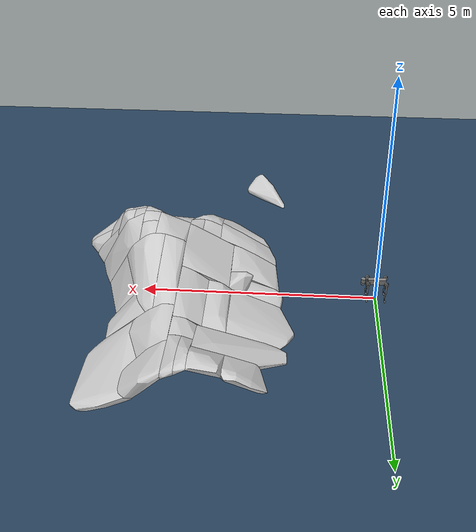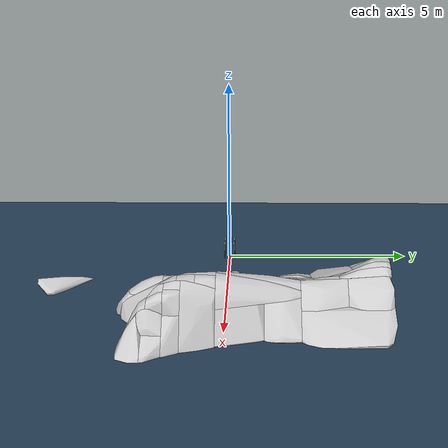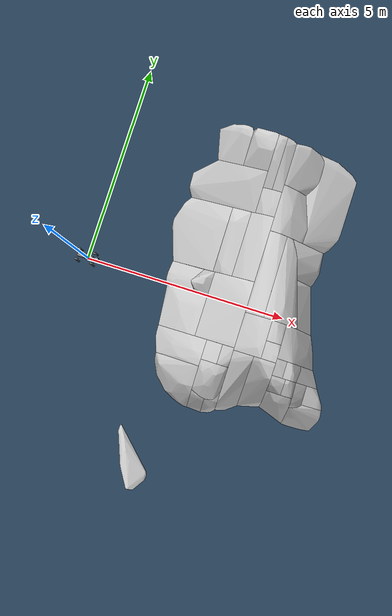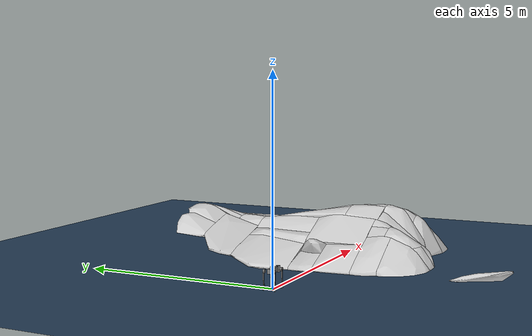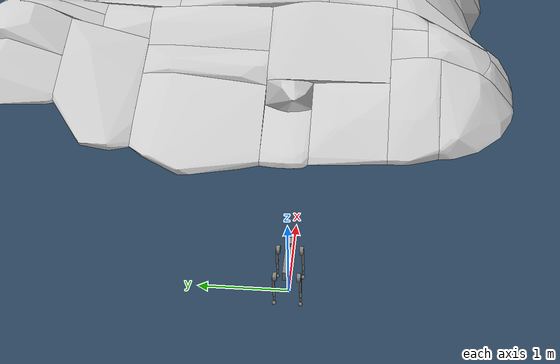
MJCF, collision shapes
<mujoco model="go2">
  <compiler angle="radian" autolimits="true"/>

  <option cone="elliptic" impratio="100"/>

  <default>
    <default class="go2">
      <geom friction="0.6" margin="0.001" condim="1"/>
      <joint axis="0 1 0" damping="2" armature="0.01" frictionloss="0.2"/>
      <motor ctrlrange="-23.7 23.7"/>
      <default class="abduction">
        <joint axis="1 0 0" range="-1.0472 1.0472"/>
      </default>
      <default class="hip">
        <default class="front_hip">
          <joint range="-1.5708 3.4907"/>
        </default>
        <default class="back_hip">
          <joint range="-0.5236 4.5379"/>
        </default>
      </default>
      <default class="knee">
        <joint range="-2.7227 -0.83776"/>
        <motor ctrlrange="-45.43 45.43"/>
      </default>
      <default class="visual">
        <geom type="mesh" contype="0" conaffinity="0" group="2"/>
      </default>
      <default class="collision">
        <geom group="3"/>
        <default class="foot">
          <geom size="0.022" pos="-0.002 0 -0.213" priority="1" solimp="0.015 1 0.022" condim="6"
            friction="0.8 0.02 0.01"/>
        </default>
      </default>
    </default>
  </default>

  <asset>
    <material name="metal" rgba=".9 .95 .95 1"/>
    <material name="black" rgba="0 0 0 1"/>
    <material name="white" rgba="1 1 1 1"/>
    <material name="gray" rgba="0.671705 0.692426 0.774270 1"/>

    <mesh file="assets/base_0.obj"/>
    <mesh file="assets/base_1.obj"/>
    <mesh file="assets/base_2.obj"/>
    <mesh file="assets/base_3.obj"/>
    <mesh file="assets/base_4.obj"/>
    <mesh file="assets/hip_0.obj"/>
    <mesh file="assets/hip_1.obj"/>
    <mesh file="assets/thigh_0.obj"/>
    <mesh file="assets/thigh_1.obj"/>
    <mesh file="assets/thigh_mirror_0.obj"/>
    <mesh file="assets/thigh_mirror_1.obj"/>
    <mesh file="assets/calf_0.obj"/>
    <mesh file="assets/calf_1.obj"/>
    <mesh file="assets/calf_mirror_0.obj"/>
    <mesh file="assets/calf_mirror_1.obj"/>
    <mesh file="assets/foot.obj"/>

    <material name="mat_huashan" rgba="0.8 0.8 0.8 1" />
    <mesh file="assets/huashan/part_0.obj" name="huashan_0"   scale="10 10 5" />
    <mesh file="assets/huashan/part_1.obj" name="huashan_1"   scale="10 10 5" />
    <mesh file="assets/huashan/part_10.obj" name="huashan_2"  scale="10 10 5" />
    <mesh file="assets/huashan/part_11.obj" name="huashan_3"  scale="10 10 5" />
    <mesh file="assets/huashan/part_12.obj" name="huashan_4"  scale="10 10 5" />
    <mesh file="assets/huashan/part_13.obj" name="huashan_5"  scale="10 10 5" />
    <mesh file="assets/huashan/part_14.obj" name="huashan_6"  scale="10 10 5" />
    <mesh file="assets/huashan/part_15.obj" name="huashan_7"  scale="10 10 5" />
    <mesh file="assets/huashan/part_16.obj" name="huashan_8"  scale="10 10 5" />
    <mesh file="assets/huashan/part_17.obj" name="huashan_9"  scale="10 10 5" />
    <mesh file="assets/huashan/part_18.obj" name="huashan_10" scale="10 10 5" />
    <mesh file="assets/huashan/part_19.obj" name="huashan_11" scale="10 10 5" />
    <mesh file="assets/huashan/part_2.obj" name="huashan_12"  scale="10 10 5" />
    <mesh file="assets/huashan/part_20.obj" name="huashan_13" scale="10 10 5" />
    <mesh file="assets/huashan/part_21.obj" name="huashan_14" scale="10 10 5" />
    <mesh file="assets/huashan/part_22.obj" name="huashan_15" scale="10 10 5" />
    <mesh file="assets/huashan/part_23.obj" name="huashan_16" scale="10 10 5" />
    <mesh file="assets/huashan/part_24.obj" name="huashan_17" scale="10 10 5" />
    <mesh file="assets/huashan/part_25.obj" name="huashan_18" scale="10 10 5" />
    <mesh file="assets/huashan/part_26.obj" name="huashan_19" scale="10 10 5" />
    <mesh file="assets/huashan/part_27.obj" name="huashan_20" scale="10 10 5" />
    <mesh file="assets/huashan/part_28.obj" name="huashan_21" scale="10 10 5" />
    <mesh file="assets/huashan/part_29.obj" name="huashan_22" scale="10 10 5" />
    <mesh file="assets/huashan/part_3.obj" name="huashan_23"  scale="10 10 5" />
    <mesh file="assets/huashan/part_30.obj" name="huashan_24" scale="10 10 5" />
    <mesh file="assets/huashan/part_31.obj" name="huashan_25" scale="10 10 5" />
    <mesh file="assets/huashan/part_32.obj" name="huashan_26" scale="10 10 5" />
    <mesh file="assets/huashan/part_33.obj" name="huashan_27" scale="10 10 5" />
    <mesh file="assets/huashan/part_34.obj" name="huashan_28" scale="10 10 5" />
    <mesh file="assets/huashan/part_35.obj" name="huashan_29" scale="10 10 5" />
    <mesh file="assets/huashan/part_36.obj" name="huashan_30" scale="10 10 5" />
    <mesh file="assets/huashan/part_37.obj" name="huashan_31" scale="10 10 5" />
    <mesh file="assets/huashan/part_38.obj" name="huashan_32" scale="10 10 5" />
    <mesh file="assets/huashan/part_39.obj" name="huashan_33" scale="10 10 5" />
    <mesh file="assets/huashan/part_4.obj" name="huashan_34"  scale="10 10 5" />
    <mesh file="assets/huashan/part_40.obj" name="huashan_35" scale="10 10 5" />
    <mesh file="assets/huashan/part_41.obj" name="huashan_36" scale="10 10 5" />
    <mesh file="assets/huashan/part_42.obj" name="huashan_37" scale="10 10 5" />
    <mesh file="assets/huashan/part_5.obj" name="huashan_38"  scale="10 10 5" />
    <mesh file="assets/huashan/part_6.obj" name="huashan_39"  scale="10 10 5" />
    <mesh file="assets/huashan/part_7.obj" name="huashan_40"  scale="10 10 5" />
    <mesh file="assets/huashan/part_8.obj" name="huashan_41"  scale="10 10 5" />
    <mesh file="assets/huashan/part_9.obj" name="huashan_42"  scale="10 10 5" />

    <texture type="skybox" builtin="gradient" rgb1="0.3 0.5 0.7" rgb2="0 0 0" width="512" height="3072"/>
    <texture type="2d" name="groundplane" builtin="checker" mark="edge" rgb1="0.2 0.3 0.4" rgb2="0.1 0.2 0.3"
      markrgb="0.8 0.8 0.8" width="300" height="300"/>
    <material name="groundplane" texture="groundplane" texuniform="true" texrepeat="5 5" reflectance="0.2"/>

  </asset>

  <worldbody>
    <light pos="0 0 1.5" dir="0 0 -1" directional="true"/>
    <geom name="floor" size="0 0 0.05" type="plane" material="groundplane"/>

    <!-- huashan -->
    <body name="mesh_huashan" pos="6 -1 2.5" euler="0 0 1.5708">
        <geom type="mesh" mesh="huashan_0" material="mat_huashan" />
        <geom type="mesh" mesh="huashan_1" material="mat_huashan" />
        <geom type="mesh" mesh="huashan_2" material="mat_huashan" />
        <geom type="mesh" mesh="huashan_3" material="mat_huashan" />
        <geom type="mesh" mesh="huashan_4" material="mat_huashan" />
        <geom type="mesh" mesh="huashan_5" material="mat_huashan" />
        <geom type="mesh" mesh="huashan_6" material="mat_huashan" />
        <geom type="mesh" mesh="huashan_7" material="mat_huashan" />
        <geom type="mesh" mesh="huashan_8" material="mat_huashan" />
        <geom type="mesh" mesh="huashan_9" material="mat_huashan" />
        <geom type="mesh" mesh="huashan_10" material="mat_huashan" />
        <geom type="mesh" mesh="huashan_11" material="mat_huashan" />
        <geom type="mesh" mesh="huashan_12" material="mat_huashan" />
        <geom type="mesh" mesh="huashan_13" material="mat_huashan" />
        <geom type="mesh" mesh="huashan_14" material="mat_huashan" />
        <geom type="mesh" mesh="huashan_15" material="mat_huashan" />
        <geom type="mesh" mesh="huashan_16" material="mat_huashan" />
        <geom type="mesh" mesh="huashan_17" material="mat_huashan" />
        <geom type="mesh" mesh="huashan_18" material="mat_huashan" />
        <geom type="mesh" mesh="huashan_19" material="mat_huashan" />
        <geom type="mesh" mesh="huashan_20" material="mat_huashan" />
        <geom type="mesh" mesh="huashan_21" material="mat_huashan" />
        <geom type="mesh" mesh="huashan_22" material="mat_huashan" />
        <geom type="mesh" mesh="huashan_23" material="mat_huashan" />
        <geom type="mesh" mesh="huashan_24" material="mat_huashan" />
        <geom type="mesh" mesh="huashan_25" material="mat_huashan" />
        <geom type="mesh" mesh="huashan_26" material="mat_huashan" />
        <geom type="mesh" mesh="huashan_27" material="mat_huashan" />
        <geom type="mesh" mesh="huashan_28" material="mat_huashan" />
        <geom type="mesh" mesh="huashan_29" material="mat_huashan" />
        <geom type="mesh" mesh="huashan_30" material="mat_huashan" />
        <geom type="mesh" mesh="huashan_31" material="mat_huashan" />
        <geom type="mesh" mesh="huashan_32" material="mat_huashan" />
        <geom type="mesh" mesh="huashan_33" material="mat_huashan" />
        <geom type="mesh" mesh="huashan_34" material="mat_huashan" />
        <geom type="mesh" mesh="huashan_35" material="mat_huashan" />
        <geom type="mesh" mesh="huashan_36" material="mat_huashan" />
        <geom type="mesh" mesh="huashan_37" material="mat_huashan" />
        <geom type="mesh" mesh="huashan_38" material="mat_huashan" />
        <geom type="mesh" mesh="huashan_39" material="mat_huashan" />
        <geom type="mesh" mesh="huashan_40" material="mat_huashan" />
        <geom type="mesh" mesh="huashan_41" material="mat_huashan" />
        <geom type="mesh" mesh="huashan_42" material="mat_huashan" />
        </body>

    <body name="base" pos="0 0 0.445" childclass="go2">
      <inertial pos="0.021112 0 -0.005366" quat="-0.000543471 0.713435 -0.00173769 0.700719" mass="6.921"
        diaginertia="0.107027 0.0980771 0.0244531"/>
      <freejoint/>
      <geom mesh="base_0" material="black" class="visual"/>
      <geom mesh="base_1" material="black" class="visual"/>
      <geom mesh="base_2" material="black" class="visual"/>
      <geom mesh="base_3" material="white" class="visual"/>
      <geom mesh="base_4" material="gray" class="visual"/>
      <geom size="0.1881 0.04675 0.057" type="box" class="collision"/>
      <geom size="0.05 0.045" pos="0.285 0 0.01" type="cylinder" class="collision"/>
      <geom size="0.047" pos="0.293 0 -0.06" class="collision"/>
      <site name="imu" pos="-0.02557 0 0.04232"/>
      <body name="FL_hip" pos="0.1934 0.0465 0">
        <inertial pos="-0.0054 0.00194 -0.000105" quat="0.497014 0.499245 0.505462 0.498237" mass="0.678"
          diaginertia="0.00088403 0.000596003 0.000479967"/>
        <joint name="FL_hip_joint" class="abduction"/>
        <geom mesh="hip_0" material="metal" class="visual"/>
        <geom mesh="hip_1" material="gray" class="visual"/>
        <geom size="0.046 0.02" pos="0 0.08 0" quat="1 1 0 0" type="cylinder" class="collision"/>
        <body name="FL_thigh" pos="0 0.0955 0">
          <inertial pos="-0.00374 -0.0223 -0.0327" quat="0.829533 0.0847635 -0.0200632 0.551623" mass="1.152"
            diaginertia="0.00594973 0.00584149 0.000878787"/>
          <joint name="FL_thigh_joint" class="front_hip"/>
          <geom mesh="thigh_0" material="metal" class="visual"/>
          <geom mesh="thigh_1" material="gray" class="visual"/>
          <geom size="0.1065 0.01225 0.017" pos="0 0 -0.1065" quat="0.707107 0 0.707107 0" type="box" class="collision"/>
          <body name="FL_calf" pos="0 0 -0.213">
            <inertial pos="0.00629595 -0.000622121 -0.141417" quat="0.710672 0.00154099 -0.00450087 0.703508"
              mass="0.241352" diaginertia="0.0014901 0.00146356 5.31397e-05"/>
            <joint name="FL_calf_joint" class="knee"/>
            <geom mesh="calf_0" material="gray" class="visual"/>
            <geom mesh="calf_1" material="black" class="visual"/>
            <geom size="0.012 0.06" pos="0.008 0 -0.06" quat="0.994493 0 -0.104807 0" type="cylinder" class="collision"/>
            <geom size="0.011 0.0325" pos="0.02 0 -0.148" quat="0.999688 0 0.0249974 0" type="cylinder" class="collision"/>
            <geom pos="0 0 -0.213" mesh="foot" class="visual" material="black"/>
            <geom name="FL" class="foot"/>
          </body>
        </body>
      </body>
      <body name="FR_hip" pos="0.1934 -0.0465 0">
        <inertial pos="-0.0054 -0.00194 -0.000105" quat="0.498237 0.505462 0.499245 0.497014" mass="0.678"
          diaginertia="0.00088403 0.000596003 0.000479967"/>
        <joint name="FR_hip_joint" class="abduction"/>
        <geom mesh="hip_0" material="metal" class="visual" quat="4.63268e-05 1 0 0"/>
        <geom mesh="hip_1" material="gray" class="visual" quat="4.63268e-05 1 0 0"/>
        <geom size="0.046 0.02" pos="0 -0.08 0" quat="0.707107 0.707107 0 0" type="cylinder" class="collision"/>
        <body name="FR_thigh" pos="0 -0.0955 0">
          <inertial pos="-0.00374 0.0223 -0.0327" quat="0.551623 -0.0200632 0.0847635 0.829533" mass="1.152"
            diaginertia="0.00594973 0.00584149 0.000878787"/>
          <joint name="FR_thigh_joint" class="front_hip"/>
          <geom mesh="thigh_mirror_0" material="metal" class="visual"/>
          <geom mesh="thigh_mirror_1" material="gray" class="visual"/>
          <geom size="0.1065 0.01225 0.017" pos="0 0 -0.1065" quat="0.707107 0 0.707107 0" type="box" class="collision"/>
          <body name="FR_calf" pos="0 0 -0.213">
            <inertial pos="0.00629595 0.000622121 -0.141417" quat="0.703508 -0.00450087 0.00154099 0.710672"
              mass="0.241352" diaginertia="0.0014901 0.00146356 5.31397e-05"/>
            <joint name="FR_calf_joint" class="knee"/>
            <geom mesh="calf_mirror_0" material="gray" class="visual"/>
            <geom mesh="calf_mirror_1" material="black" class="visual"/>
            <geom size="0.013 0.06" pos="0.01 0 -0.06" quat="0.995004 0 -0.0998334 0" type="cylinder" class="collision"/>
            <geom size="0.011 0.0325" pos="0.02 0 -0.148" quat="0.999688 0 0.0249974 0" type="cylinder" class="collision"/>
            <geom pos="0 0 -0.213" mesh="foot" class="visual" material="black"/>
            <geom name="FR" class="foot"/>
          </body>
        </body>
      </body>
      <body name="RL_hip" pos="-0.1934 0.0465 0">
        <inertial pos="0.0054 0.00194 -0.000105" quat="0.505462 0.498237 0.497014 0.499245" mass="0.678"
          diaginertia="0.00088403 0.000596003 0.000479967"/>
        <joint name="RL_hip_joint" class="abduction"/>
        <geom mesh="hip_0" material="metal" class="visual" quat="4.63268e-05 0 1 0"/>
        <geom mesh="hip_1" material="gray" class="visual" quat="4.63268e-05 0 1 0"/>
        <geom size="0.046 0.02" pos="0 0.08 0" quat="0.707107 0.707107 0 0" type="cylinder" class="collision"/>
        <body name="RL_thigh" pos="0 0.0955 0">
          <inertial pos="-0.00374 -0.0223 -0.0327" quat="0.829533 0.0847635 -0.0200632 0.551623" mass="1.152"
            diaginertia="0.00594973 0.00584149 0.000878787"/>
          <joint name="RL_thigh_joint" class="back_hip"/>
          <geom mesh="thigh_0" material="metal" class="visual"/>
          <geom mesh="thigh_1" material="gray" class="visual"/>
          <geom size="0.1065 0.01225 0.017" pos="0 0 -0.1065" quat="0.707107 0 0.707107 0" type="box" class="collision"/>
          <body name="RL_calf" pos="0 0 -0.213">
            <inertial pos="0.00629595 -0.000622121 -0.141417" quat="0.710672 0.00154099 -0.00450087 0.703508"
              mass="0.241352" diaginertia="0.0014901 0.00146356 5.31397e-05"/>
            <joint name="RL_calf_joint" class="knee"/>
            <geom mesh="calf_0" material="gray" class="visual"/>
            <geom mesh="calf_1" material="black" class="visual"/>
            <geom size="0.013 0.06" pos="0.01 0 -0.06" quat="0.995004 0 -0.0998334 0" type="cylinder" class="collision"/>
            <geom size="0.011 0.0325" pos="0.02 0 -0.148" quat="0.999688 0 0.0249974 0" type="cylinder" class="collision"/>
            <geom pos="0 0 -0.213" mesh="foot" class="visual" material="black"/>
            <geom name="RL" class="foot"/>
          </body>
        </body>
      </body>
      <body name="RR_hip" pos="-0.1934 -0.0465 0">
        <inertial pos="0.0054 -0.00194 -0.000105" quat="0.499245 0.497014 0.498237 0.505462" mass="0.678"
          diaginertia="0.00088403 0.000596003 0.000479967"/>
        <joint name="RR_hip_joint" class="abduction"/>
        <geom mesh="hip_0" material="metal" class="visual" quat="2.14617e-09 4.63268e-05 4.63268e-05 -1"/>
        <geom mesh="hip_1" material="gray" class="visual" quat="2.14617e-09 4.63268e-05 4.63268e-05 -1"/>
        <geom size="0.046 0.02" pos="0 -0.08 0" quat="0.707107 0.707107 0 0" type="cylinder" class="collision"/>
        <body name="RR_thigh" pos="0 -0.0955 0">
          <inertial pos="-0.00374 0.0223 -0.0327" quat="0.551623 -0.0200632 0.0847635 0.829533" mass="1.152"
            diaginertia="0.00594973 0.00584149 0.000878787"/>
          <joint name="RR_thigh_joint" class="back_hip"/>
          <geom mesh="thigh_mirror_0" material="metal" class="visual"/>
          <geom mesh="thigh_mirror_1" material="gray" class="visual"/>
          <geom size="0.1065 0.01225 0.017" pos="0 0 -0.1065" quat="0.707107 0 0.707107 0" type="box" class="collision"/>
          <body name="RR_calf" pos="0 0 -0.213">
            <inertial pos="0.00629595 0.000622121 -0.141417" quat="0.703508 -0.00450087 0.00154099 0.710672"
              mass="0.241352" diaginertia="0.0014901 0.00146356 5.31397e-05"/>
            <joint name="RR_calf_joint" class="knee"/>
            <geom mesh="calf_mirror_0" material="gray" class="visual"/>
            <geom mesh="calf_mirror_1" material="black" class="visual"/>
            <geom size="0.013 0.06" pos="0.01 0 -0.06" quat="0.995004 0 -0.0998334 0" type="cylinder" class="collision"/>
            <geom size="0.011 0.0325" pos="0.02 0 -0.148" quat="0.999688 0 0.0249974 0" type="cylinder" class="collision"/>
            <geom pos="0 0 -0.213" mesh="foot" class="visual" material="black"/>
            <geom name="RR" class="foot"/>
          </body>
        </body>
      </body>
    </body>
  </worldbody>

  <actuator>
    <motor class="abduction" name="FL_hip" joint="FL_hip_joint"/>
    <motor class="hip" name="FL_thigh" joint="FL_thigh_joint"/>
    <motor class="knee" name="FL_calf" joint="FL_calf_joint"/>
    <motor class="abduction" name="FR_hip" joint="FR_hip_joint"/>
    <motor class="hip" name="FR_thigh" joint="FR_thigh_joint"/>
    <motor class="knee" name="FR_calf" joint="FR_calf_joint"/>
    <motor class="abduction" name="RL_hip" joint="RL_hip_joint"/>
    <motor class="hip" name="RL_thigh" joint="RL_thigh_joint"/>
    <motor class="knee" name="RL_calf" joint="RL_calf_joint"/>
    <motor class="abduction" name="RR_hip" joint="RR_hip_joint"/>
    <motor class="hip" name="RR_thigh" joint="RR_thigh_joint"/>
    <motor class="knee" name="RR_calf" joint="RR_calf_joint"/>
  </actuator>

  <keyframe>
    <key name="home" qpos="0 0 0.27 1 0 0 0 0 0.9 -1.8 0 0.9 -1.8 0 0.9 -1.8 0 0.9 -1.8"
      ctrl="0 0.9 -1.8 0 0.9 -1.8 0 0.9 -1.8 0 0.9 -1.8"/>
  </keyframe>
</mujoco>
